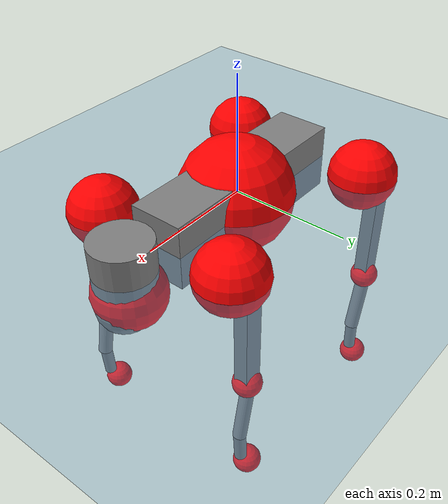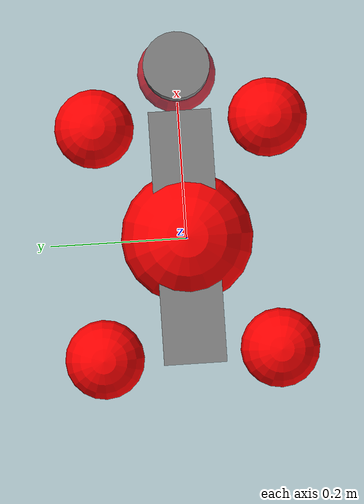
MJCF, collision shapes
<mujoco model="go2">
  <compiler angle="radian" assetdir="assets" balanceinertia="true" inertiafromgeom="false"/>

  <option timestep="0.005" density="1.2" viscosity="2e-05"/>

  <size nkey="1"/>

  <visual>
    <quality shadowsize="8192"/>
    <map shadowclip="0.5"/>
  </visual>

  <default>
    <default class="/">
      <geom contype="0" conaffinity="0" group="1" solref="-1000 -80"/>
      <site size="0.01 0.005 0.005" group="5"/>
      <general forcelimited="true" biastype="affine" gainprm="20" biasprm="0 -20 -0.5"/>
      <default class="go2">
        <joint armature="0.01" damping="0.01" frictionloss="0.2"/>
        <geom condim="1" margin="0.001"/>
        <default class="visual">
          <geom type="mesh" group="2"/>
        </default>
        <default class="collision">
          <geom group="3"/>
          <default class="foot">
            <geom size="0.022 0 0" condim="6" priority="1" friction="0.8 0.02 0.01" solimp="0.015 1 0.022"/>
          </default>
        </default>
        <default class="reward_collision_sphere">
          <geom group="5" rgba="1 0 0 1"/>
        </default>
      </default>
    </default>
  </default>

  <asset>
    <texture type="skybox" colorspace="auto" name="//unnamed_texture_0" builtin="gradient" rgb1="0.95 0.95 0.95" rgb2="0.95 0.95 0.95" width="100" height="600"/>
    <texture type="2d" colorspace="auto" name="texplane" builtin="checker" rgb1="0.345 0.575 0.748" rgb2="0.345 0.575 0.748" markrgb="1 1 1" width="512" height="512"/>
    <material name="MatPlane" class="/" texture="texplane" texuniform="true" texrepeat="2 2" specular="0.9"/>
    <material name="metal" class="/" rgba="0.9 0.95 0.95 1"/>
    <material name="black" class="/" rgba="0 0 0 1"/>
    <material name="white" class="/"/>
    <material name="gray" class="/" rgba="0.671705 0.692426 0.77427 1"/>
    <mesh name="base_0" class="/" file="base_0.obj"/>
    <mesh name="base_1" class="/" file="base_1.obj"/>
    <mesh name="base_2" class="/" file="base_2.obj"/>
    <mesh name="base_3" class="/" file="base_3.obj"/>
    <mesh name="base_4" class="/" file="base_4.obj"/>
    <mesh name="hip_0" class="/" file="hip_0.obj"/>
    <mesh name="hip_1" class="/" file="hip_1.obj"/>
    <mesh name="thigh_0" class="/" file="thigh_0.obj"/>
    <mesh name="thigh_1" class="/" file="thigh_1.obj"/>
    <mesh name="thigh_mirror_0" class="/" file="thigh_mirror_0.obj"/>
    <mesh name="thigh_mirror_1" class="/" file="thigh_mirror_1.obj"/>
    <mesh name="calf_0" class="/" file="calf_0.obj"/>
    <mesh name="calf_1" class="/" file="calf_1.obj"/>
    <mesh name="calf_mirror_0" class="/" file="calf_mirror_0.obj"/>
    <mesh name="calf_mirror_1" class="/" file="calf_mirror_1.obj"/>
    <mesh name="foot" class="/" file="foot.obj"/>
  </asset>

  <worldbody>
    <geom name="floor" class="/" size="100 100 0.125" type="plane" group="0" material="MatPlane"/>
    <light name="toplight_shadow" class="/" pos="0 0 5" dir="0.0990148 0.0990148 -0.990148" type="directional" ambient="0.04 0.04 0.04" diffuse="0.55 0.55 0.55" specular="0.12 0.12 0.12"/>
    <light name="toplight_fill" class="/" pos="0 0 5" dir="0.0990148 0.0990148 -0.990148" type="directional" castshadow="false" ambient="0.04 0.04 0.04" diffuse="0.3 0.3 0.3" specular="0.08 0.08 0.08"/>
    <body name="trunk" childclass="go2" pos="0.00179115 -0.00127656 -0.00269097" quat="1 -5.64271e-06 6.62067e-05 0.000102865">
      <inertial pos="0.0208419 -5.60322e-05 -0.00449422" quat="0.00521022 0.706171 -0.00828545 0.707974" mass="6.71842" diaginertia="0.054162 0.162758 0.0188612"/>
      <joint name="//unnamed_joint_0" type="free" armature="0" damping="0" frictionloss="0"/>
      <geom name="//unnamed_geom_1" class="visual" material="black" mesh="base_0"/>
      <geom name="//unnamed_geom_2" class="visual" material="black" mesh="base_1"/>
      <geom name="//unnamed_geom_3" class="visual" material="black" mesh="base_2"/>
      <geom name="//unnamed_geom_4" class="visual" material="white" mesh="base_3"/>
      <geom name="//unnamed_geom_5" class="visual" material="gray" mesh="base_4"/>
      <geom name="trunk_1" class="collision" size="0.183608 0.0456335 0.0556387" type="box"/>
      <geom name="trunk_2" class="collision" size="0.0488059 0.0439253" pos="0.249685 0 0.00948532" type="cylinder"/>
      <geom name="trunk_3" class="collision" size="0.0458775" pos="0.256694 0 -0.0569119"/>
      <geom name="//unnamed_geom_9" class="reward_collision_sphere" size="0.0976118"/>
      <geom name="//unnamed_geom_10" class="reward_collision_sphere" size="0.0585671" pos="0.245305 0 -0.042684"/>
      <site name="imu" pos="-0.0266647 0.0134355 0.0279812" size="0.00976118"/>
      <camera name="track" pos="0 -2.20747 0" quat="0.707107 0.707107 0 0" mode="trackcom"/>
      <camera name="ego_camera" pos="0.273339 0 0.042684" quat="-0.5 -0.5 0.5 0.5"/>
      <body name="FL_hip" pos="0.16766 0.0493675 0.00234261" quat="1 0.000293644 3.19687e-05 0.000818687">
        <inertial pos="-0.00223025 -5.2118e-05 -0.00246333" quat="0.49833 0.498569 0.504115 0.498963" mass="0.619129" diaginertia="0.000445617 0.00098594 0.000376677"/>
        <joint name="FL_hip_joint" pos="0 0 0" axis="0.999954 0.00433693 -0.00855894" range="-1.04488 1.0561" armature="0.0101209" damping="0.00266061" frictionloss="0.221298"/>
        <geom name="//unnamed_geom_11" class="visual" material="metal" mesh="hip_0"/>
        <geom name="//unnamed_geom_12" class="visual" material="gray" mesh="hip_1"/>
        <geom name="//unnamed_geom_13" class="collision" size="0.0449014 0.0195224" pos="0 0.0882986 0" quat="0.707107 0.707107 0 0" type="cylinder"/>
        <geom name="//unnamed_geom_14" class="reward_collision_sphere" size="0.0585671" pos="0 0.0772613 0"/>
        <body name="FL_thigh" pos="-0.000127252 0.105989 0.00266316" quat="1 0.000100001 0.000220726 0.000258621">
          <inertial pos="-0.0050609 -0.0240428 -0.0317974" quat="0.829462 0.0852511 -0.0205201 0.551637" mass="1.03331" diaginertia="0.00303921 0.00978774 0.000647547"/>
          <joint name="FL_thigh_joint" pos="0 0 0" axis="-0.00433458 0.999974 -0.00575995" range="-1.57347 3.50277" armature="0.0100918" damping="0.0149647" frictionloss="0.219295"/>
          <geom name="//unnamed_geom_15" class="visual" material="metal" mesh="thigh_0"/>
          <geom name="//unnamed_geom_16" class="visual" material="gray" mesh="thigh_1"/>
          <geom name="//unnamed_geom_17" class="collision" size="0.103957 0.0119574 0.016594" pos="0 0 -0.101019" quat="0.707107 0 0.707107 0" type="box"/>
          <body name="FL_calf" pos="0.000122239 0.000880425 -0.20275" quat="1 3.80267e-06 -0.000872449 2.4688e-05">
            <inertial pos="0.00748114 0.00171594 -0.134971" quat="0.710389 -0.00135357 -0.00404196 0.703796" mass="0.230657" diaginertia="0.000741308 0.00246182 3.98738e-05"/>
            <joint name="FL_calf_joint" pos="0 0 0" axis="0.000644228 1 -9.38252e-06" range="-2.73693 -0.836716" armature="0.00855183" damping="0" frictionloss="0.184784"/>
            <geom name="//unnamed_geom_18" class="visual" material="gray" mesh="calf_0"/>
            <geom name="//unnamed_geom_19" class="visual" material="black" mesh="calf_1"/>
            <geom name="FL_calf0" class="collision" size="0.0117134 0.0585671" pos="0.0070087 0 -0.0569119" quat="0.994493 0 -0.104807 0" type="cylinder"/>
            <geom name="//unnamed_geom_21" class="collision" size="0.0107373 0.0317238" pos="0.0175218 0 -0.140383" quat="0.999688 0 0.0249974 0" type="cylinder"/>
            <geom name="//unnamed_geom_22" class="visual" pos="0 0 -0.202037" quat="1 0 0 0" material="black" mesh="foot"/>
            <geom name="FL_foot" class="foot" size="0.0235982" pos="-0.00175218 0 -0.202037"/>
            <geom name="//unnamed_geom_24" class="reward_collision_sphere" size="0.0244029"/>
            <geom name="//unnamed_geom_25" class="reward_collision_sphere" size="0.0244029" pos="-0.00175218 0 -0.202037"/>
            <site name="FL_foot" class="foot" pos="-0.00175218 0 -0.202037" size="0.00976118"/>
          </body>
        </body>
      </body>
      <body name="FR_hip" pos="0.168733 -0.0521309 0.000127467" quat="0.999999 -0.000269394 0.00129787 0.000394274">
        <inertial pos="-0.0044127 0.000329317 -0.000250079" quat="0.498242 0.506197 0.500738 0.494754" mass="0.612683" diaginertia="0.000456272 0.000967259 0.000366324"/>
        <joint name="FR_hip_joint" pos="0 0 0" axis="1 -0.000496664 -0.000642123" stiffness="0.00573807" range="-1.00618 1.04535" armature="0.0108042" damping="0.0023123" frictionloss="0.176165"/>
        <geom name="//unnamed_geom_26" class="visual" pos="0 1.35204e-09 5.79918e-08" quat="4.63268e-05 1 0 0" material="metal" mesh="hip_0"/>
        <geom name="//unnamed_geom_27" class="visual" pos="0 2.19182e-09 -1.43436e-07" quat="4.63268e-05 1 0 0" material="gray" mesh="hip_1"/>
        <geom name="//unnamed_geom_28" class="collision" size="0.0449014 0.0195224" pos="0 -0.0882986 0" quat="0.707107 0.707107 0 0" type="cylinder"/>
        <geom name="//unnamed_geom_29" class="reward_collision_sphere" size="0.0585671" pos="0 -0.0772613 0"/>
        <body name="FR_thigh" pos="-0.000280521 -0.10797 -0.000890521" quat="1 -0.000335971 0.00043298 0.000197675">
          <inertial pos="-0.00431961 0.0270275 -0.0334474" quat="0.548872 -0.0240382 0.0834124 0.831387" mass="1.07005" diaginertia="0.00294108 0.0089427 0.000649489"/>
          <joint name="FR_thigh_joint" pos="0 0 0" axis="-0.0129139 -0.999891 -0.00712244" range="-3.54214 1.51413" armature="0.00973026" damping="0.00352224" frictionloss="0.221321"/>
          <geom name="//unnamed_geom_30" class="visual" material="metal" mesh="thigh_mirror_0"/>
          <geom name="//unnamed_geom_31" class="visual" material="gray" mesh="thigh_mirror_1"/>
          <geom name="//unnamed_geom_32" class="collision" size="0.103957 0.0119574 0.016594" pos="0 0 -0.101019" quat="0.707107 0 0.707107 0" type="box"/>
          <body name="FR_calf" pos="0.00165996 -0.000667562 -0.202474" quat="1 0.00013962 1.5333e-05 -0.000147706">
            <inertial pos="0.00782936 0.000276966 -0.136815" quat="0.703094 -0.00889276 0.00480507 0.711025" mass="0.23148" diaginertia="0.000767726 0.00236762 4.05508e-05"/>
            <joint name="FR_calf_joint" pos="0 0 0" axis="0.00336693 -0.99999 0.00297972" range="0.842673 2.71854" armature="0.00962767" damping="0.0195171" frictionloss="0.217503"/>
            <geom name="//unnamed_geom_33" class="visual" material="gray" mesh="calf_mirror_0"/>
            <geom name="//unnamed_geom_34" class="visual" material="black" mesh="calf_mirror_1"/>
            <geom name="FR_calf0" class="collision" size="0.0126895 0.0585671" pos="0.00876088 0 -0.0569119" quat="0.995004 0 -0.0998334 0" type="cylinder"/>
            <geom name="//unnamed_geom_36" class="collision" size="0.0107373 0.0317238" pos="0.0175218 0 -0.140383" quat="0.999688 0 0.0249974 0" type="cylinder"/>
            <geom name="//unnamed_geom_37" class="visual" pos="0 0 -0.202037" quat="1 0 0 0" material="black" mesh="foot"/>
            <geom name="FR_foot" class="foot" size="0.0239409" pos="-0.00175218 0 -0.202037"/>
            <geom name="//unnamed_geom_39" class="reward_collision_sphere" size="0.0244029"/>
            <geom name="//unnamed_geom_40" class="reward_collision_sphere" size="0.0244029" pos="-0.00175218 0 -0.202037"/>
            <site name="FR_foot" class="foot" pos="-0.00175218 0 -0.202037" size="0.00976118"/>
          </body>
        </body>
      </body>
      <body name="RL_hip" pos="-0.172687 0.0551015 0.00232563" quat="0.999999 -0.000694588 -0.000856367 -0.00124142">
        <inertial pos="0.00326065 0.00125638 0.000921127" quat="0.505022 0.497949 0.49688 0.50011" mass="0.643002" diaginertia="0.000451938 0.000982064 0.000355451"/>
        <joint name="RL_hip_joint" pos="0 0 0" axis="-0.999727 -0.0212018 -0.00979323" stiffness="0.00571089" range="-1.08416 1.06043" armature="0.00980581" damping="0.0124133" frictionloss="0.221396"/>
        <geom name="//unnamed_geom_41" class="visual" pos="6.31106e-10 0 1.23711e-07" quat="4.63268e-05 0 1 0" material="metal" mesh="hip_0"/>
        <geom name="//unnamed_geom_42" class="visual" pos="1.0231e-09 0 1.09714e-07" quat="4.63268e-05 0 1 0" material="gray" mesh="hip_1"/>
        <geom name="//unnamed_geom_43" class="collision" size="0.0449014 0.0195224" pos="0 0.0882986 0" quat="0.707107 0.707107 0 0" type="cylinder"/>
        <geom name="//unnamed_geom_44" class="reward_collision_sphere" size="0.0585671" pos="0 0.0772613 0"/>
        <body name="RL_thigh" pos="0.00169054 0.108369 0.00103857" quat="1 0.000101977 -0.000425735 -0.000673602">
          <inertial pos="-0.00213857 -0.0258542 -0.0326412" quat="0.828164 0.0846043 -0.0196574 0.553715" mass="1.07267" diaginertia="0.00316762 0.00950971 0.000697374"/>
          <joint name="RL_thigh_joint" pos="0 0 0" axis="-0.00269793 0.999993 0.00265167" stiffness="0.00085597" range="-0.542705 4.54984" armature="0.00908957" damping="0.0167665" frictionloss="0.169216"/>
          <geom name="//unnamed_geom_45" class="visual" material="metal" mesh="thigh_0"/>
          <geom name="//unnamed_geom_46" class="visual" material="gray" mesh="thigh_1"/>
          <geom name="//unnamed_geom_47" class="collision" size="0.103957 0.0119574 0.016594" pos="0 0 -0.101019" quat="0.707107 0 0.707107 0" type="box"/>
          <body name="RL_calf" pos="0.00187932 0.00198012 -0.198805" quat="1 -0.000207048 -0.000169769 9.72897e-07">
            <inertial pos="0.00554273 -0.000498345 -0.132053" quat="0.70993 0.000218262 -0.00506415 0.704254" mass="0.225238" diaginertia="0.00076607 0.00235593 4.066e-05"/>
            <joint name="RL_calf_joint" pos="0 0 0" axis="-0.000517713 1 -5.2101e-05" stiffness="0.0029037" range="-2.77209 -0.83426" armature="0.00861629" damping="0.0154862" frictionloss="0.204052"/>
            <geom name="//unnamed_geom_48" class="visual" material="gray" mesh="calf_0"/>
            <geom name="//unnamed_geom_49" class="visual" material="black" mesh="calf_1"/>
            <geom name="RL_calf0" class="collision" size="0.0126895 0.0585671" pos="0.00876088 0 -0.0569119" quat="0.995004 0 -0.0998334 0" type="cylinder"/>
            <geom name="//unnamed_geom_51" class="collision" size="0.0107373 0.0317238" pos="0.0175218 0 -0.140383" quat="0.999688 0 0.0249974 0" type="cylinder"/>
            <geom name="//unnamed_geom_52" class="visual" pos="0 0 -0.202037" quat="1 0 0 0" material="black" mesh="foot"/>
            <geom name="RL_foot" class="foot" size="0.0214602" pos="-0.00175218 0 -0.202037"/>
            <geom name="//unnamed_geom_54" class="reward_collision_sphere" size="0.0244029"/>
            <geom name="//unnamed_geom_55" class="reward_collision_sphere" size="0.0244029" pos="-0.00175218 0 -0.202037"/>
            <site name="RL_foot" class="foot" pos="-0.00175218 0 -0.202037" size="0.00976118"/>
          </body>
        </body>
      </body>
      <body name="RR_hip" pos="-0.17113 -0.048946 0.00102907" quat="1 0.000282983 -0.00042129 -0.000608807">
        <inertial pos="0.00419439 -0.0018091 0.000177541" quat="0.499149 0.494855 0.496476 0.509392" mass="0.63779" diaginertia="0.000473599 0.00100952 0.00036028"/>
        <joint name="RR_hip_joint" pos="0 0 0" axis="-0.999966 0.00773252 -0.00275483" range="-1.01542 1.05649" armature="0.00890881" damping="0" frictionloss="0.199422"/>
        <geom name="//unnamed_geom_56" class="visual" pos="-6.23225e-10 1.35204e-09 6.57196e-08" quat="2.14617e-09 4.63268e-05 4.63268e-05 -1" material="metal" mesh="hip_0"/>
        <geom name="//unnamed_geom_57" class="visual" pos="-1.04259e-09 2.19182e-09 2.5315e-07" quat="2.14617e-09 4.63268e-05 4.63268e-05 -1" material="gray" mesh="hip_1"/>
        <geom name="//unnamed_geom_58" class="collision" size="0.0449014 0.0195224" pos="0 -0.0882986 0" quat="0.707107 0.707107 0 0" type="cylinder"/>
        <geom name="//unnamed_geom_59" class="reward_collision_sphere" size="0.0585671" pos="0 -0.0772613 0"/>
        <body name="RR_thigh" pos="0.00117904 -0.10736 0.000585275" quat="1 0.000433032 0.000213181 -0.000828662">
          <inertial pos="-0.00335867 0.0223039 -0.0315818" quat="0.551113 -0.0183846 0.0840384 0.829985" mass="1.00286" diaginertia="0.00286844 0.00931179 0.000659832"/>
          <joint name="RR_thigh_joint" pos="0 0 0" axis="-0.000832343 -0.999883 0.0153054" range="-4.5177 0.562124" armature="0.010791" damping="0.00240379" frictionloss="0.171693"/>
          <geom name="//unnamed_geom_60" class="visual" material="metal" mesh="thigh_mirror_0"/>
          <geom name="//unnamed_geom_61" class="visual" material="gray" mesh="thigh_mirror_1"/>
          <geom name="//unnamed_geom_62" class="collision" size="0.103957 0.0119574 0.016594" pos="0 0 -0.101019" quat="0.707107 0 0.707107 0" type="box"/>
          <body name="RR_calf" pos="0.00319463 0.0014481 -0.203362" quat="1 0.000447741 0.000119084 -0.000322516">
            <inertial pos="0.00256132 0.00106277 -0.131976" quat="0.694604 -0.00823776 0.00512991 0.719327" mass="0.223024" diaginertia="0.00081129 0.00242747 4.26727e-05"/>
            <joint name="RR_calf_joint" pos="0 0 0" axis="-0.00964476 -0.999932 0.00649156" range="0.858835 2.66015" armature="0.00944903" damping="0.0185053" frictionloss="0.218742"/>
            <geom name="//unnamed_geom_63" class="visual" material="gray" mesh="calf_mirror_0"/>
            <geom name="//unnamed_geom_64" class="visual" material="black" mesh="calf_mirror_1"/>
            <geom name="RR_calf0" class="collision" size="0.0126895 0.0585671" pos="0.00876088 0 -0.0569119" quat="0.995004 0 -0.0998334 0" type="cylinder"/>
            <geom name="//unnamed_geom_66" class="collision" size="0.0107373 0.0317238" pos="0.0175218 0 -0.140383" quat="0.999688 0 0.0249974 0" type="cylinder"/>
            <geom name="//unnamed_geom_67" class="visual" pos="0 0 -0.202037" quat="1 0 0 0" material="black" mesh="foot"/>
            <geom name="RR_foot" class="foot" size="0.020059" pos="-0.00175218 0 -0.202037"/>
            <geom name="//unnamed_geom_69" class="reward_collision_sphere" size="0.0244029"/>
            <geom name="//unnamed_geom_70" class="reward_collision_sphere" size="0.0244029" pos="-0.00175218 0 -0.202037"/>
            <site name="RR_foot" class="foot" pos="-0.00175218 0 -0.202037" size="0.00976118"/>
          </body>
        </body>
      </body>
    </body>
  </worldbody>

  <contact>
    <pair class="/" geom1="floor" geom2="FL_foot" name="//unnamed_contact_0"/>
    <pair class="/" geom1="floor" geom2="FR_foot" name="//unnamed_contact_1"/>
    <pair class="/" geom1="floor" geom2="RL_foot" name="//unnamed_contact_2"/>
    <pair class="/" geom1="floor" geom2="RR_foot" name="//unnamed_contact_3"/>
  </contact>

  <actuator>
    <general name="FL_hip" class="/" joint="FL_hip_joint" forcerange="-23.1994 23.1994" gainprm="19.6674" biasprm="0 -19.6674 -0.491716"/>
    <general name="FL_thigh" class="/" joint="FL_thigh_joint" forcerange="-21.1147 21.1147" gainprm="19.6674" biasprm="0 -19.6674 -0.491716"/>
    <general name="FL_calf" class="/" joint="FL_calf_joint" forcerange="-45.0902 45.0902" gainprm="19.6674" biasprm="0 -19.6674 -0.491716"/>
    <general name="FR_hip" class="/" joint="FR_hip_joint" forcerange="-20.7895 20.7895" gainprm="19.6674" biasprm="0 -19.6674 -0.491716"/>
    <general name="FR_thigh" class="/" joint="FR_thigh_joint" forcerange="-22.5726 22.5726" gainprm="19.6674" biasprm="0 -19.6674 -0.491716"/>
    <general name="FR_calf" class="/" joint="FR_calf_joint" forcerange="-42.778 42.778" gainprm="19.6674" biasprm="0 -19.6674 -0.491716"/>
    <general name="RL_hip" class="/" joint="RL_hip_joint" forcerange="-22.6259 22.6259" gainprm="19.6674" biasprm="0 -19.6674 -0.491716"/>
    <general name="RL_thigh" class="/" joint="RL_thigh_joint" forcerange="-22.8106 22.8106" gainprm="19.6674" biasprm="0 -19.6674 -0.491716"/>
    <general name="RL_calf" class="/" joint="RL_calf_joint" forcerange="-45.3101 45.3101" gainprm="19.6674" biasprm="0 -19.6674 -0.491716"/>
    <general name="RR_hip" class="/" joint="RR_hip_joint" forcerange="-23.9814 23.9814" gainprm="19.6674" biasprm="0 -19.6674 -0.491716"/>
    <general name="RR_thigh" class="/" joint="RR_thigh_joint" forcerange="-20.8912 20.8912" gainprm="19.6674" biasprm="0 -19.6674 -0.491716"/>
    <general name="RR_calf" class="/" joint="RR_calf_joint" forcerange="-42.5215 42.5215" gainprm="19.6674" biasprm="0 -19.6674 -0.491716"/>
  </actuator>

  <sensor>
    <gyro site="imu" name="imu_angular_velocity"/>
    <velocimeter site="imu" name="imu_linear_velocity"/>
    <framelinvel objtype="site" objname="FL_foot" name="FL_foot_global_linear_velocity"/>
    <framelinvel objtype="site" objname="FR_foot" name="FR_foot_global_linear_velocity"/>
    <framelinvel objtype="site" objname="RL_foot" name="RL_foot_global_linear_velocity"/>
    <framelinvel objtype="site" objname="RR_foot" name="RR_foot_global_linear_velocity"/>
  </sensor>

  <keyframe>
    <key name="home" qpos="0 0 0.325 1 0 0 0 0.1 0.8 -1.5 -0.1 -0.8 1.5 -0.1 0.8 -1.5 0.1 -0.8 1.5"/>
  </keyframe>
</mujoco>
